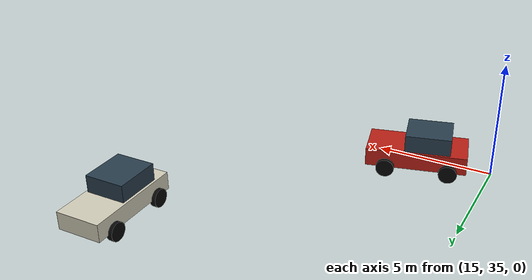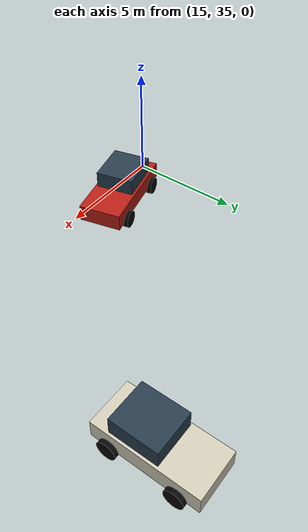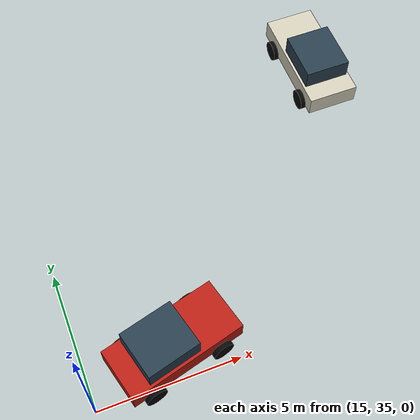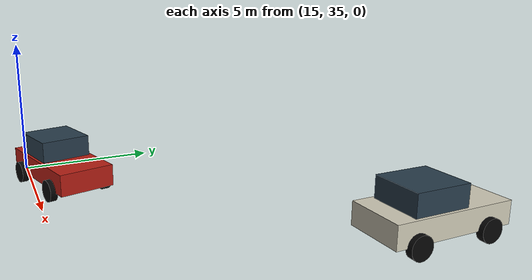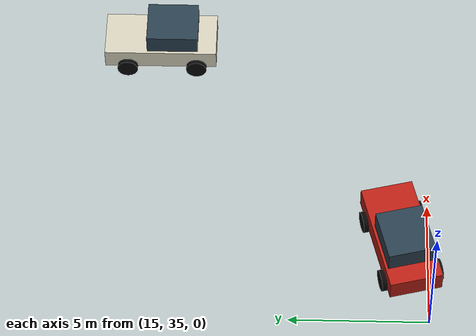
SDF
<sdf version="1.6">
 <world name="uav_complex_120m">
  <model name="loading_truck">
   <static>true</static>
   <link name="body">
    <pose>0 0 0.85 0 0 0</pose>
    <collision name="collision">
     <geometry><box><size>4.2 1.9 0.75</size></box></geometry>
     <laser_retro>100</laser_retro>
     <surface><friction><ode><mu>1.0</mu><mu2>1.0</mu2></ode></friction></surface>
    </collision>
    <visual name="visual">
     <geometry><box><size>4.2 1.9 0.75</size></box></geometry>
     <material>
      <ambient>0.82 0.8 0.72 1</ambient>
      <diffuse>0.82 0.8 0.72 1</diffuse>
      <specular>0.08 0.08 0.08 1</specular>
     </material>
    </visual>
   </link>
   <link name="cabin">
    <pose>-0.45 0 1.55 0 0 0</pose>
    <collision name="collision">
     <geometry><box><size>1.9 1.7 0.8</size></box></geometry>
     <laser_retro>100</laser_retro>
     <surface><friction><ode><mu>1.0</mu><mu2>1.0</mu2></ode></friction></surface>
    </collision>
    <visual name="visual">
     <geometry><box><size>1.9 1.7 0.8</size></box></geometry>
     <material>
      <ambient>0.16 0.24 0.3 1</ambient>
      <diffuse>0.16 0.24 0.3 1</diffuse>
      <specular>0.08 0.08 0.08 1</specular>
     </material>
    </visual>
   </link>
   <link name="wheel_0">
    <pose>-1.35 -1 0.48 1.5708 0 0</pose>
    <collision name="collision">
     <geometry><cylinder><radius>0.38</radius><length>0.24</length></cylinder></geometry>
     <laser_retro>100</laser_retro>
     <surface><friction><ode><mu>1.0</mu><mu2>1.0</mu2></ode></friction></surface>
    </collision>
    <visual name="visual">
     <geometry><cylinder><radius>0.38</radius><length>0.24</length></cylinder></geometry>
     <material>
      <ambient>0.025 0.025 0.025 1</ambient>
      <diffuse>0.025 0.025 0.025 1</diffuse>
      <specular>0.08 0.08 0.08 1</specular>
     </material>
    </visual>
   </link>
   <link name="wheel_1">
    <pose>-1.35 1 0.48 1.5708 0 0</pose>
    <collision name="collision">
     <geometry><cylinder><radius>0.38</radius><length>0.24</length></cylinder></geometry>
     <laser_retro>100</laser_retro>
     <surface><friction><ode><mu>1.0</mu><mu2>1.0</mu2></ode></friction></surface>
    </collision>
    <visual name="visual">
     <geometry><cylinder><radius>0.38</radius><length>0.24</length></cylinder></geometry>
     <material>
      <ambient>0.025 0.025 0.025 1</ambient>
      <diffuse>0.025 0.025 0.025 1</diffuse>
      <specular>0.08 0.08 0.08 1</specular>
     </material>
    </visual>
   </link>
   <link name="wheel_2">
    <pose>1.25 -1 0.48 1.5708 0 0</pose>
    <collision name="collision">
     <geometry><cylinder><radius>0.38</radius><length>0.24</length></cylinder></geometry>
     <laser_retro>100</laser_retro>
     <surface><friction><ode><mu>1.0</mu><mu2>1.0</mu2></ode></friction></surface>
    </collision>
    <visual name="visual">
     <geometry><cylinder><radius>0.38</radius><length>0.24</length></cylinder></geometry>
     <material>
      <ambient>0.025 0.025 0.025 1</ambient>
      <diffuse>0.025 0.025 0.025 1</diffuse>
      <specular>0.08 0.08 0.08 1</specular>
     </material>
    </visual>
   </link>
   <link name="wheel_3">
    <pose>1.25 1 0.48 1.5708 0 0</pose>
    <collision name="collision">
     <geometry><cylinder><radius>0.38</radius><length>0.24</length></cylinder></geometry>
     <laser_retro>100</laser_retro>
     <surface><friction><ode><mu>1.0</mu><mu2>1.0</mu2></ode></friction></surface>
    </collision>
    <visual name="visual">
     <geometry><cylinder><radius>0.38</radius><length>0.24</length></cylinder></geometry>
     <material>
      <ambient>0.025 0.025 0.025 1</ambient>
      <diffuse>0.025 0.025 0.025 1</diffuse>
      <specular>0.08 0.08 0.08 1</specular>
     </material>
    </visual>
   </link>
   <pose>27 45 0 0 0 1.5708</pose>
  </model>
  <model name="yard_car">
   <static>true</static>
   <link name="body">
    <pose>0 0 0.85 0 0 0</pose>
    <collision name="collision">
     <geometry><box><size>4.2 1.9 0.75</size></box></geometry>
     <laser_retro>100</laser_retro>
     <surface><friction><ode><mu>1.0</mu><mu2>1.0</mu2></ode></friction></surface>
    </collision>
    <visual name="visual">
     <geometry><box><size>4.2 1.9 0.75</size></box></geometry>
     <material>
      <ambient>0.72 0.12 0.08 1</ambient>
      <diffuse>0.72 0.12 0.08 1</diffuse>
      <specular>0.08 0.08 0.08 1</specular>
     </material>
    </visual>
   </link>
   <link name="cabin">
    <pose>-0.45 0 1.55 0 0 0</pose>
    <collision name="collision">
     <geometry><box><size>1.9 1.7 0.8</size></box></geometry>
     <laser_retro>100</laser_retro>
     <surface><friction><ode><mu>1.0</mu><mu2>1.0</mu2></ode></friction></surface>
    </collision>
    <visual name="visual">
     <geometry><box><size>1.9 1.7 0.8</size></box></geometry>
     <material>
      <ambient>0.16 0.24 0.3 1</ambient>
      <diffuse>0.16 0.24 0.3 1</diffuse>
      <specular>0.08 0.08 0.08 1</specular>
     </material>
    </visual>
   </link>
   <link name="wheel_0">
    <pose>-1.35 -1 0.48 1.5708 0 0</pose>
    <collision name="collision">
     <geometry><cylinder><radius>0.38</radius><length>0.24</length></cylinder></geometry>
     <laser_retro>100</laser_retro>
     <surface><friction><ode><mu>1.0</mu><mu2>1.0</mu2></ode></friction></surface>
    </collision>
    <visual name="visual">
     <geometry><cylinder><radius>0.38</radius><length>0.24</length></cylinder></geometry>
     <material>
      <ambient>0.025 0.025 0.025 1</ambient>
      <diffuse>0.025 0.025 0.025 1</diffuse>
      <specular>0.08 0.08 0.08 1</specular>
     </material>
    </visual>
   </link>
   <link name="wheel_1">
    <pose>-1.35 1 0.48 1.5708 0 0</pose>
    <collision name="collision">
     <geometry><cylinder><radius>0.38</radius><length>0.24</length></cylinder></geometry>
     <laser_retro>100</laser_retro>
     <surface><friction><ode><mu>1.0</mu><mu2>1.0</mu2></ode></friction></surface>
    </collision>
    <visual name="visual">
     <geometry><cylinder><radius>0.38</radius><length>0.24</length></cylinder></geometry>
     <material>
      <ambient>0.025 0.025 0.025 1</ambient>
      <diffuse>0.025 0.025 0.025 1</diffuse>
      <specular>0.08 0.08 0.08 1</specular>
     </material>
    </visual>
   </link>
   <link name="wheel_2">
    <pose>1.25 -1 0.48 1.5708 0 0</pose>
    <collision name="collision">
     <geometry><cylinder><radius>0.38</radius><length>0.24</length></cylinder></geometry>
     <laser_retro>100</laser_retro>
     <surface><friction><ode><mu>1.0</mu><mu2>1.0</mu2></ode></friction></surface>
    </collision>
    <visual name="visual">
     <geometry><cylinder><radius>0.38</radius><length>0.24</length></cylinder></geometry>
     <material>
      <ambient>0.025 0.025 0.025 1</ambient>
      <diffuse>0.025 0.025 0.025 1</diffuse>
      <specular>0.08 0.08 0.08 1</specular>
     </material>
    </visual>
   </link>
   <link name="wheel_3">
    <pose>1.25 1 0.48 1.5708 0 0</pose>
    <collision name="collision">
     <geometry><cylinder><radius>0.38</radius><length>0.24</length></cylinder></geometry>
     <laser_retro>100</laser_retro>
     <surface><friction><ode><mu>1.0</mu><mu2>1.0</mu2></ode></friction></surface>
    </collision>
    <visual name="visual">
     <geometry><cylinder><radius>0.38</radius><length>0.24</length></cylinder></geometry>
     <material>
      <ambient>0.025 0.025 0.025 1</ambient>
      <diffuse>0.025 0.025 0.025 1</diffuse>
      <specular>0.08 0.08 0.08 1</specular>
     </material>
    </visual>
   </link>
   <pose>18 36 0 0 0 0.25</pose>
  </model>
 </world>
</sdf>
